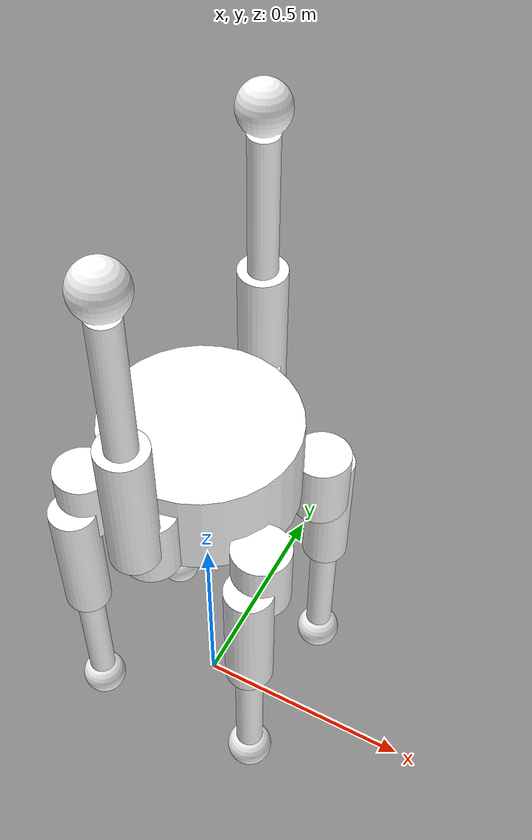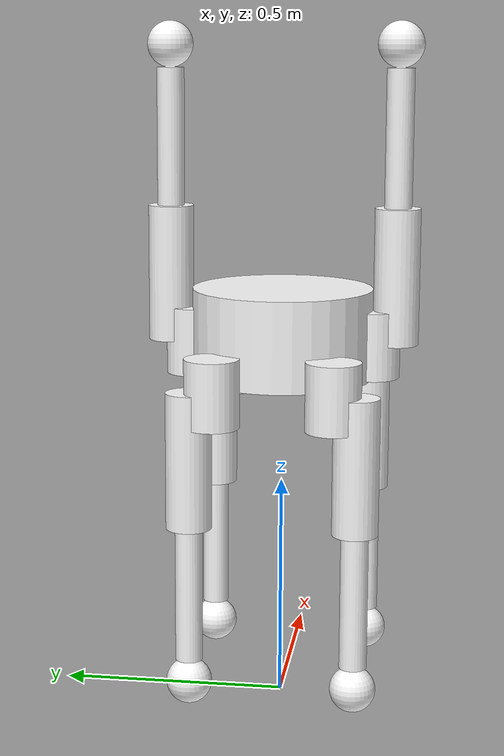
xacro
<?xml version="1.0" ?>
<robot name="moonbot01" xmlns:xacro="http://ros.org/wiki/xacro">

  <!-- include files -->
  <xacro:include filename="$(find moonbot_description)/urdf/yonaka/materials.xacro"/>
  <xacro:include filename="$(find moonbot_description)/urdf/yonaka/moonbot01_macro.xacro"/>
  <xacro:include filename="$(find moonbot_description)/urdf/yonaka/common_gazebo.xacro"/>

  <xacro:moonbot01/>

</robot>

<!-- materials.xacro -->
<robot name="moonbot01" xmlns:xacro="http://ros.org/wiki/xacro">

  <!-- link rviz colors -->
  <material name="White">
    <color rgba="1 1 1 1"/>
  </material>

  <material name="Black">
    <color rgba="0 0 0 1"/>
  </material>

</robot>

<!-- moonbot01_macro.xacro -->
<robot name="moonbot01" xmlns:xacro="http://ros.org/wiki/xacro">

  <xacro:macro name="moonbot01">

    <!-- include files -->
    <xacro:include filename="$(find moonbot_description)/urdf/yonaka/common.xacro" />
    <xacro:include filename="$(find moonbot_description)/urdf/yonaka/ros2_control.xacro" />
    <xacro:include filename="$(find moonbot_description)/urdf/yonaka/moonbot01_arm_macro.xacro" />
    <xacro:include filename="$(find moonbot_description)/urdf/yonaka/moonbot01_leg_macro.xacro" />

    <!-- base link -->
    <link name="base_link"/>

    <!-- body joint -->
    <joint name="lift_to_body" type="fixed">
      <origin xyz="0 0 0.73883" rpy="0 0 0"/>
      <parent link="base_link"/>
      <child link="body_link"/>
    </joint>
    <!-- body link -->
    <xacro:link name="body_link" material="White" mesh="BODY.STL" mass="1.491600" ixx="0.021826" ixy="0.000074" ixz="0.002275" iyy="0.011612" iyz="-0.000022" izz="0.018192"/>

    <!-- left arm joint -->
    <joint name="base_to_left_arm_base" type="fixed">
      <origin xyz="0.0 0.2 0.15" rpy="0 3.1416 0"/>
      <parent link="body_link"/>
      <child link="left_arm_base_link"/>
    </joint>
    <!-- left arm -->
    <xacro:moonbot01_arm prefix="left_"/>

    <!-- right arm joint -->
    <joint name="base_to_right_arm_base" type="fixed">
      <origin xyz="0.0 -0.2 0.15" rpy="0 3.1416 0"/>
      <parent link="body_link"/>
      <child link="right_arm_base_link"/>
    </joint>
    <!-- right arm -->
    <xacro:moonbot01_arm prefix="right_"/>

    <!-- forward left leg joint -->
    <joint name="base_to_f_left_leg_base" type="fixed">
      <origin xyz="0.2 0.13 -0.07" rpy="0 0 0"/>
      <parent link="body_link"/>
      <child link="f_left_leg_base_link"/>
    </joint>
    <!-- forward left leg -->
    <xacro:moonbot01_leg prefix="f_left_"/>

    <!-- forward right leg joint -->
    <joint name="base_to_f_right_leg_base" type="fixed">
      <origin xyz="0.2 -0.13 -0.07" rpy="0 0 0"/>
      <parent link="body_link"/>
      <child link="f_right_leg_base_link"/>
    </joint>
    <!-- forward right leg -->
    <xacro:moonbot01_leg prefix="f_right_"/>

    <!-- back left leg joint -->
    <joint name="base_to_b_left_leg_base" type="fixed">
      <origin xyz="-0.2 0.13 -0.07" rpy="0 0 0"/>
      <parent link="body_link"/>
      <child link="b_left_leg_base_link"/>
    </joint>
    <!-- back left leg -->
    <xacro:moonbot01_leg prefix="b_left_"/>

    <!-- back right leg joint -->
    <joint name="base_to_b_right_leg_base" type="fixed">
      <origin xyz="-0.2 -0.13 -0.07" rpy="0 0 0"/>
      <parent link="body_link"/>
      <child link="b_right_leg_base_link"/>
    </joint>
    <!-- back right leg -->
    <xacro:moonbot01_leg prefix="b_right_"/>

  </xacro:macro>

</robot>

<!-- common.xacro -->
<robot name="moonbot01" xmlns:xacro="http://ros.org/wiki/xacro">

  <xacro:macro name="link" params="name material mesh mass ixx ixy ixz iyy iyz izz">
    <link name="${name}">
      <visual>
        <material name="${material}"/>
        <geometry>
          <mesh filename="package://moonbot_description/meshesY_old/${mesh}" scale="0.001 0.001 0.001"/>
        </geometry>
      </visual>
      <collision>
        <geometry>
          <mesh filename="package://moonbot_description/meshesY_old/${mesh}" scale="0.001 0.001 0.001"/>
        </geometry>
      </collision>
      <inertial>
        <mass value="${mass}"/>
        <inertia ixx="${ixx}" ixy="${ixy}" ixz="${ixz}" iyy="${iyy}" iyz="${iyz}" izz="${izz}"/>
      </inertial>
    </link>
  </xacro:macro>

</robot>

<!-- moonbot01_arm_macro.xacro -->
<robot name="moonbot01" xmlns:xacro="http://ros.org/wiki/xacro">

  <xacro:macro name="moonbot01_arm" params="prefix">

    <!-- include files -->
    <xacro:include filename="$(find moonbot_description)/urdf/yonaka/common.xacro" />
    <xacro:include filename="$(find moonbot_description)/urdf/yonaka/common_gazebo.xacro" />

    <!-- joint limits [rad] -->
    <xacro:property name="j1_lower_limit" value="${radians( -360)}"/>
    <xacro:property name="j1_upper_limit" value="${radians(  360)}"/>
    <xacro:property name="j2_lower_limit" value="${radians(-360)}"/>
    <xacro:property name="j2_upper_limit" value="${radians( 360)}"/>
    <xacro:property name="j3_lower_limit" value="${radians(-360)}"/>
    <xacro:property name="j3_upper_limit" value="${radians( 360)}"/>

    <!-- joint verocity limits [rad/s] -->
    <xacro:property name="j1_velocity_limit" value="${radians(30)}"/>
    <xacro:property name="j2_velocity_limit" value="${radians(30)}"/>
    <xacro:property name="j3_velocity_limit" value="${radians(30)}"/>

    <!-- base link -->
    <link name="${prefix}arm_base_link">
      <inertial>
        <mass value="0.001"/>
        <inertia ixx="0.000000" ixy="0.000000" ixz="0.000000" iyy="0.000000" iyz="0.000000" izz="0.000000"/>
      </inertial>
    </link>

    <!-- joint 1 -->
    <joint name="${prefix}arm_joint1" type="revolute">
      <axis xyz="0 0 1" rpy="0 0 0"/>
      <limit effort="1000.0" lower="${j1_lower_limit}" upper="${j1_upper_limit}" velocity="${j1_velocity_limit}"/>
      <origin xyz="0 0 0.07" rpy="0 0 0"/>
      <parent link="${prefix}arm_base_link"/>
      <child link="${prefix}arm_link1"/>
    </joint>
    <!-- link 1 -->
    <xacro:link name="${prefix}arm_link1" material="White" mesh="F_L_CROTCH_Y_LINK.STL" mass="0.215675" ixx="0.000785" ixy="0.000000" ixz="0.000000" iyy="0.000419" iyz="0.000005" izz="0.000700"/>

    <!-- joint 2 -->
    <joint name="${prefix}arm_joint2" type="revolute">
      <axis xyz="0 1 0" rpy="0 0 0"/>
      <limit effort="1000.0" lower="${j2_lower_limit}" upper="${j2_upper_limit}" velocity="${j2_velocity_limit}"/>
      <xacro:if value="${prefix == 'right_'}">
        <origin xyz="0.0 -0.05 -0.0" rpy="0 0 0"/>
      </xacro:if>
      <xacro:if value="${prefix == 'left_'}">
        <origin xyz="0.0 0.05 -0.0" rpy="0 0 0"/>
      </xacro:if>
      <parent link="${prefix}arm_link1"/>
      <child link="${prefix}arm_link2"/>
    </joint>

    <!-- link 2 -->
    <xacro:link name="${prefix}arm_link2" material="White" mesh="F_L_CROTCH_P_LINK.STL" mass="0.318353" ixx="0.007936" ixy="0.000000" ixz="0.000000" iyy="0.007995" iyz="-0.000167" izz="0.000285"/>

    <!-- joint 3 -->
    <joint name="${prefix}arm_joint3" type="revolute">
      <axis xyz="0 1 0" rpy="0 0 0"/>
      <limit effort="1000.0" lower="${j3_lower_limit}" upper="${j3_upper_limit}" velocity="${j3_velocity_limit}"/>
      <origin xyz="0.0 0 -0.30" rpy="0 0 0"/>
      <parent link="${prefix}arm_link2"/>
      <child link="${prefix}arm_link3"/>
    </joint>

    <!-- link 3 -->
    <xacro:link name="${prefix}arm_link3" material="White" mesh="F_L_KNEE_P_LINK.STL" mass="0.086899" ixx="0.000118" ixy="0.000000" ixz="0.000000" iyy="0.000127" iyz="0.000006" izz="0.000079"/>

  </xacro:macro>

</robot>

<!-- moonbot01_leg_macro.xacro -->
<robot name="moonbot01" xmlns:xacro="http://ros.org/wiki/xacro">

  <xacro:macro name="moonbot01_leg" params="prefix">

    <!-- include files -->
    <xacro:include filename="$(find moonbot_description)/urdf/yonaka/common.xacro" />
    <xacro:include filename="$(find moonbot_description)/urdf/yonaka/common_gazebo.xacro" />

    <!-- joint limits [rad] -->
    <xacro:property name="j1_lower_limit" value="${radians( -360)}"/>
    <xacro:property name="j1_upper_limit" value="${radians(  360)}"/>
    <xacro:property name="j2_lower_limit" value="${radians(-360)}"/>
    <xacro:property name="j2_upper_limit" value="${radians( 360)}"/>
    <xacro:property name="j3_lower_limit" value="${radians(-360)}"/>
    <xacro:property name="j3_upper_limit" value="${radians( 360)}"/>

    <!-- joint verocity limits [rad/s] -->
    <xacro:property name="j1_velocity_limit" value="${radians(180)}"/>
    <xacro:property name="j2_velocity_limit" value="${radians(180)}"/>
    <xacro:property name="j3_velocity_limit" value="${radians(180)}"/>

    <!-- base link -->
    <link name="${prefix}leg_base_link">
      <inertial>
        <mass value="0.001"/>
        <inertia ixx="0.000000" ixy="0.000000" ixz="0.000000" iyy="0.000000" iyz="0.000000" izz="0.000000"/>
      </inertial>
    </link>

    <!-- joint 1 -->
    <joint name="${prefix}leg_joint1" type="revolute">
      <axis xyz="0 0 1" rpy="0 0 0"/>
      <limit effort="1000.0" lower="${j1_lower_limit}" upper="${j1_upper_limit}" velocity="${j1_velocity_limit}"/>
      <origin xyz="0 0 0.07" rpy="0 0 0"/>
      <parent link="${prefix}leg_base_link"/>
      <child link="${prefix}leg_link1"/>
    </joint>
    <!-- link 1 -->
    <xacro:link name="${prefix}leg_link1" material="White" mesh="F_L_CROTCH_Y_LINK.STL" mass="0.215675" ixx="0.000785" ixy="0.000000" ixz="0.000000" iyy="0.000419" iyz="0.000005" izz="0.000700"/>

    <!-- joint 2 -->
    <joint name="${prefix}leg_joint2" type="revolute">
      <axis xyz="0 1 0" rpy="0 0 0"/>
      <limit effort="1000.0" lower="${j2_lower_limit}" upper="${j2_upper_limit}" velocity="${j2_velocity_limit}"/>
      <xacro:if value="${prefix == 'f_left_'}">
        <origin xyz="0.0 0.05 -0.0" rpy="0 0 0"/>
      </xacro:if>
      <xacro:if value="${prefix == 'f_right_'}">
        <origin xyz="0.0 -0.05 -0.0" rpy="0 0 0"/>
      </xacro:if>
      <xacro:if value="${prefix == 'b_right_'}">
        <origin xyz="0.0 -0.05 -0.0" rpy="0 0 0"/>
      </xacro:if>
      <xacro:if value="${prefix == 'b_left_'}">
        <origin xyz="0.0 0.05 -0.0" rpy="0 0 0"/>
      </xacro:if>
      <parent link="${prefix}leg_link1"/>
      <child link="${prefix}leg_link2"/>
    </joint>

    <!-- link 2 -->
    <xacro:link name="${prefix}leg_link2" material="White" mesh="F_L_CROTCH_P_LINK.STL" mass="0.318353" ixx="0.007936" ixy="0.000000" ixz="0.000000" iyy="0.007995" iyz="-0.000167" izz="0.000285"/>

    <!-- joint 3 -->
    <joint name="${prefix}leg_joint3" type="revolute">
      <axis xyz="0 1 0" rpy="0 0 0"/>
      <limit effort="1000.0" lower="${j3_lower_limit}" upper="${j3_upper_limit}" velocity="${j3_velocity_limit}"/>
      <origin xyz="0.0 0 -0.30" rpy="0 0 0"/>
      <parent link="${prefix}leg_link2"/>
      <child link="${prefix}leg_link3"/>
    </joint>

    <!-- link 3 -->
    <xacro:link name="${prefix}leg_link3" material="White" mesh="F_L_KNEE_P_LINK.STL" mass="0.086899" ixx="0.000118" ixy="0.000000" ixz="0.000000" iyy="0.000127" iyz="0.000006" izz="0.000079"/>

  </xacro:macro>

</robot>
